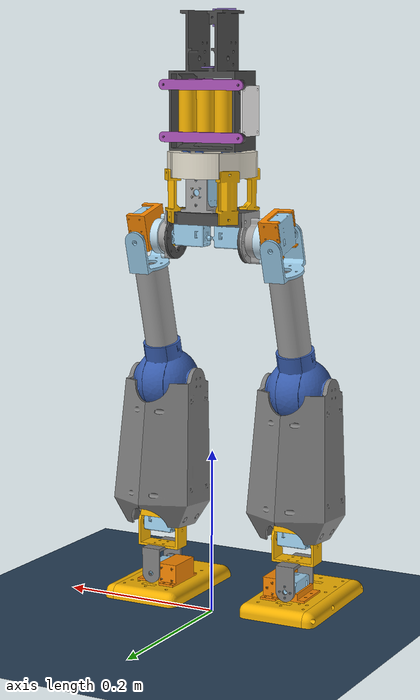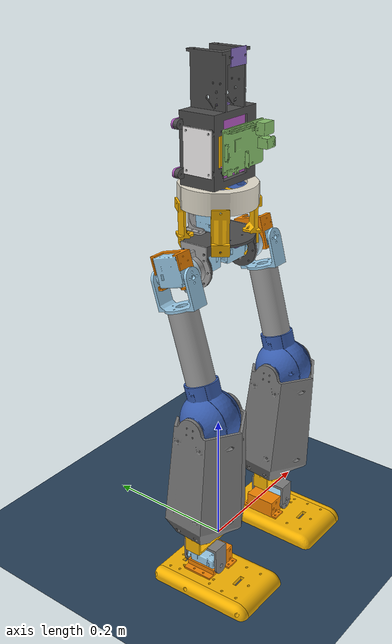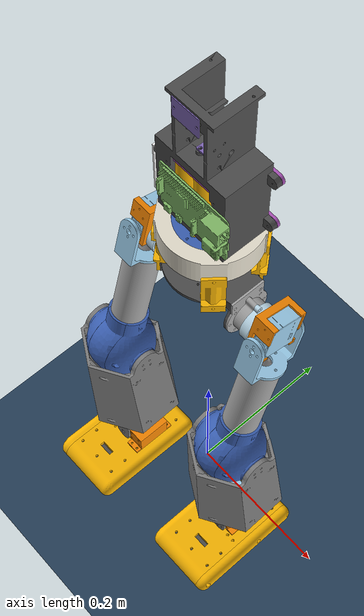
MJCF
<mujoco model="scene">
    <include file="wild_robot.xml" />

    <visual>
        <headlight diffuse="0.6 0.6 0.6" ambient="0.3 0.3 0.3" specular="0 0 0" />
        <rgba haze="0.15 0.25 0.35 1" />
        <global azimuth="160" elevation="-20" />
    </visual>

    <asset>
        <texture type="skybox" builtin="gradient" rgb1="0.3 0.5 0.7" rgb2="0 0 0" width="512" height="3072" />
        <texture type="2d" name="groundplane" builtin="checker" mark="edge" rgb1="0.2 0.3 0.4" rgb2="0.1 0.2 0.3" markrgb="0.8 0.8 0.8" width="300" height="300" />
        <material name="groundplane" texture="groundplane" texuniform="true" texrepeat="5 5" reflectance="0.2" />
    </asset>

    <worldbody>
        <light pos="0 0 3.5" dir="0 0 -1" directional="true" />
        <geom name="floor" size="0 0 0.05" pos="0 0 0" type="plane" material="groundplane" />
    </worldbody>

    <keyframe>
        <key name="home" qpos="-0.00692549 0.0149391 0.487869 0.999632 -0.0254871 -0.00610409 -0.00700632 -3.42235e-05 -0.00215037 -0.0452561 0.0278619 0.0200629 0.0390773 -2.97196e-05 0.0469174 0.0275132 0.0237825 -0.0304712" />
    </keyframe>
</mujoco>

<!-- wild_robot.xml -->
<!-- Generated using onshape-to-robot -->
<!-- Onshape document_id: ba106cac193c0e2253e1958f -->
<mujoco model="wild_robot">
  <compiler angle="radian" meshdir="assets" autolimits="true"/>
  <default>
    <default class="wild_robot">
      <joint frictionloss="0.1" armature="0.005"/>
      <position kp="50" dampratio="1"/>
      <default class="visual">
        <geom type="mesh" contype="0" conaffinity="0" group="2"/>
      </default>
      <default class="collision">
        <geom group="3"/>
      </default>
    </default>
  </default>
  <!-- Additional sensors.xml -->
  <sensor>
    <gyro site="trunk_imu" name="gyro"/>
    <accelerometer site="trunk_imu" name="accelerometer"/>
    <framequat objtype="site" objname="trunk_imu" name="orientation"/>
    <framezaxis objtype="site" objname="trunk_imu" name="upvector"/>
    <framexaxis objtype="site" objname="trunk_imu" name="forwardvector"/>
    <framelinvel objtype="site" objname="trunk_imu" name="global_linvel"/>
    <frameangvel objtype="site" objname="trunk_imu" name="global_angvel"/>
    <gyro site="right_leg_imu" name="right_leg_gyro"/>
    <accelerometer site="right_leg_imu" name="right_leg_acc"/>
    <gyro site="left_leg_imu" name="left_leg_gyro"/>
    <accelerometer site="left_leg_imu" name="left_leg_acc"/>
  </sensor>
  <!-- Additional joints_properties.xml -->
  <default>
    <default class="lobotServo">
      <geom contype="0" conaffinity="0"/>
      <joint damping="0.60" frictionloss="0.052" armature="0.028"/>
      <position kp="17.8" kv="0.0" forcerange="-3.35 3.35"/>
    </default>
    <default class="backlash">
      <!-- +/- 0.5° of backlash -->
      <joint damping="0.01" frictionloss="0" armature="0.01" limited="true" range="-0.008726646259971648 0.008726646259971648"/>
    </default>
  </default>
  <worldbody>
    <body name="base" pos="0 0 0.49">
      <freejoint name="floating_base"/>
      <!-- Link waist -->
      <body name="waist" pos="0 0 0" quat="1 0 0 0" childclass="wild_robot">
        <inertial pos="-3.08835e-05 0.00181517 0.00596571" mass="0.439621" fullinertia="0.000698685 0.000998265 0.00070313 7.22885e-08 5.24148e-07 -1.38528e-05"/>
        <!-- Part htd_45h_1circle -->
        <geom type="mesh" class="visual" pos="-0.00143119 0.0596393 -0.0273687" quat="0.499918 0.500082 -0.500082 -0.499918" mesh="htd_45h_1circle" material="htd_45h_1circle_material"/>
        <geom type="mesh" class="collision" pos="-0.00143119 0.0596393 -0.0273687" quat="0.499918 0.500082 -0.500082 -0.499918" mesh="htd_45h_1circle" material="htd_45h_1circle_material"/>
        <!-- Part waist_trunk_support -->
        <geom type="mesh" class="visual" pos="-0.000153209 -0.000128558 0.12518" quat="0.422618 0 0 0.906308" mesh="waist_trunk_support" material="waist_trunk_support_material"/>
        <geom type="mesh" class="collision" pos="-0.000153209 -0.000128558 0.12518" quat="0.422618 0 0 0.906308" mesh="waist_trunk_support" material="waist_trunk_support_material"/>
        <!-- Part trunk_bottom -->
        <geom type="mesh" class="visual" pos="0 0 0" quat="0 0 0 1" mesh="trunk_bottom" material="trunk_bottom_material"/>
        <geom type="mesh" class="collision" pos="0 0 0" quat="0 0 0 1" mesh="trunk_bottom" material="trunk_bottom_material"/>
        <!-- Part htd_45h_1circle_2 -->
        <geom type="mesh" class="visual" pos="-0.059645 0.00619509 -0.00396881" quat="1 0.000164358 -0 -2.84495e-16" mesh="htd_45h_1circle" material="htd_45h_1circle_material"/>
        <geom type="mesh" class="collision" pos="-0.059645 0.00619509 -0.00396881" quat="1 0.000164358 -0 -2.84495e-16" mesh="htd_45h_1circle" material="htd_45h_1circle_material"/>
        <!-- Part tunk_servo_connect -->
        <geom type="mesh" class="visual" pos="-2.77556e-17 -1.04083e-17 0" quat="2.84495e-16 0 0 1" mesh="tunk_servo_connect" material="tunk_servo_connect_material"/>
        <geom type="mesh" class="collision" pos="-2.77556e-17 -1.04083e-17 0" quat="2.84495e-16 0 0 1" mesh="tunk_servo_connect" material="tunk_servo_connect_material"/>
        <!-- Part hip_cover -->
        <geom type="mesh" class="visual" pos="-0.00025 3.85976e-17 -6.93889e-18" quat="1 0 0 -2.84495e-16" mesh="hip_cover" material="hip_cover_material"/>
        <geom type="mesh" class="collision" pos="-0.00025 3.85976e-17 -6.93889e-18" quat="1 0 0 -2.84495e-16" mesh="hip_cover" material="hip_cover_material"/>
        <!-- Part scroll_out -->
        <geom type="mesh" class="visual" pos="-9.02056e-17 1.49186e-16 0.12518" quat="0.422618 0 -2.22045e-16 0.906308" mesh="scroll_out" material="scroll_out_material"/>
        <geom type="mesh" class="collision" pos="-9.02056e-17 1.49186e-16 0.12518" quat="0.422618 0 -2.22045e-16 0.906308" mesh="scroll_out" material="scroll_out_material"/>
        <!-- Part waist_trunk_support_2 -->
        <geom type="mesh" class="visual" pos="0.000153209 -0.000128558 0.12518" quat="0.422618 0 9.69569e-18 -0.906308" mesh="waist_trunk_support" material="waist_trunk_support_material"/>
        <geom type="mesh" class="collision" pos="0.000153209 -0.000128558 0.12518" quat="0.422618 0 9.69569e-18 -0.906308" mesh="waist_trunk_support" material="waist_trunk_support_material"/>
        <!-- Part hip_trunk_connect -->
        <geom type="mesh" class="visual" pos="-0.0001 3.81639e-17 -6.93889e-18" quat="1 0 0 -2.84495e-16" mesh="hip_trunk_connect" material="hip_trunk_connect_material"/>
        <geom type="mesh" class="collision" pos="-0.0001 3.81639e-17 -6.93889e-18" quat="1 0 0 -2.84495e-16" mesh="hip_trunk_connect" material="hip_trunk_connect_material"/>
        <!-- Part waist_trunk_support_3 -->
        <geom type="mesh" class="visual" pos="-0.000153209 0.000128558 0.12518" quat="0.906308 0 0 0.422618" mesh="waist_trunk_support" material="waist_trunk_support_material"/>
        <geom type="mesh" class="collision" pos="-0.000153209 0.000128558 0.12518" quat="0.906308 0 0 0.422618" mesh="waist_trunk_support" material="waist_trunk_support_material"/>
        <!-- Part scroll_inner -->
        <geom type="mesh" class="visual" pos="-0.000306418 0.000257115 0.12518" quat="0.906308 -8.77968e-17 -0 -0.422618" mesh="scroll_inner" material="scroll_inner_material"/>
        <geom type="mesh" class="collision" pos="-0.000306418 0.000257115 0.12518" quat="0.906308 -8.77968e-17 -0 -0.422618" mesh="scroll_inner" material="scroll_inner_material"/>
        <!-- Part pca9548a -->
        <geom type="mesh" class="visual" pos="-6.93889e-18 -0.0287 -0.0076" quat="0.707107 0 0 0.707107" mesh="pca9548a" material="pca9548a_material"/>
        <geom type="mesh" class="collision" pos="-6.93889e-18 -0.0287 -0.0076" quat="0.707107 0 0 0.707107" mesh="pca9548a" material="pca9548a_material"/>
        <!-- Part waist_trunk_support_4 -->
        <geom type="mesh" class="visual" pos="0.000153209 0.000128558 0.12518" quat="0.906308 0 0 -0.422618" mesh="waist_trunk_support" material="waist_trunk_support_material"/>
        <geom type="mesh" class="collision" pos="0.000153209 0.000128558 0.12518" quat="0.906308 0 0 -0.422618" mesh="waist_trunk_support" material="waist_trunk_support_material"/>
        <!-- Part hip_cover_2 -->
        <geom type="mesh" class="visual" pos="0.00025 -3.85976e-17 -6.93889e-18" quat="2.84495e-16 0 0 1" mesh="hip_cover" material="hip_cover_material"/>
        <geom type="mesh" class="collision" pos="0.00025 -3.85976e-17 -6.93889e-18" quat="2.84495e-16 0 0 1" mesh="hip_cover" material="hip_cover_material"/>
        <!-- Part htd_45h_1circle_3 -->
        <geom type="mesh" class="visual" pos="0.00143119 -0.0596393 -0.0273687" quat="0.499918 0.500082 0.500082 0.499918" mesh="htd_45h_1circle" material="htd_45h_1circle_material"/>
        <geom type="mesh" class="collision" pos="0.00143119 -0.0596393 -0.0273687" quat="0.499918 0.500082 0.500082 0.499918" mesh="htd_45h_1circle" material="htd_45h_1circle_material"/>
        <!-- Part hip_trunk_connect_2 -->
        <geom type="mesh" class="visual" pos="0.0001 -3.81639e-17 -6.93889e-18" quat="2.84495e-16 0 0 1" mesh="hip_trunk_connect" material="hip_trunk_connect_material"/>
        <geom type="mesh" class="collision" pos="0.0001 -3.81639e-17 -6.93889e-18" quat="2.84495e-16 0 0 1" mesh="hip_trunk_connect" material="hip_trunk_connect_material"/>
        <!-- Link chassis -->
        <body name="chassis" pos="4.17458e-05 -1.97751e-05 0.0482" quat="0.000583051 1 -2.40923e-07 -0.00041321">
          <!-- Joint from waist to chassis -->
          <joint axis="0 0 1" name="waist" type="hinge" range="-1.5707963267948966 1.5707963267948966" class="lobotServo"/>
          <inertial pos="0.00235226 0.00416672 -0.0682563" mass="0.841214" fullinertia="0.00126289 0.00149567 0.000913668 -0.000107674 2.45804e-05 3.30802e-05"/>
          <!-- Part cell -->
          <geom type="mesh" class="visual" pos="0.0233086 -0.211191 -0.0331" quat="0.707107 0.707107 3.14018e-16 2.96301e-16" mesh="cell" material="cell_material"/>
          <geom type="mesh" class="collision" pos="0.0233086 -0.211191 -0.0331" quat="0.707107 0.707107 3.14018e-16 2.96301e-16" mesh="cell" material="cell_material"/>
          <!-- Part battery_hook -->
          <geom type="mesh" class="visual" pos="-0.000141421 -0.0296414 0.1141" quat="4.996e-16 -4.08675e-17 -1.37213e-16 -1" mesh="battery_hook" material="battery_hook_material"/>
          <geom type="mesh" class="collision" pos="-0.000141421 -0.0296414 0.1141" quat="4.996e-16 -4.08675e-17 -1.37213e-16 -1" mesh="battery_hook" material="battery_hook_material"/>
          <!-- Part rp_assemble -->
          <geom type="mesh" class="visual" pos="0.00985858 0.0311486 -0.068" quat="1 -0 -1.02979e-16 6.017e-16" mesh="rp_assemble" material="rp_assemble_material"/>
          <geom type="mesh" class="collision" pos="0.00985858 0.0311486 -0.068" quat="1 -0 -1.02979e-16 6.017e-16" mesh="rp_assemble" material="rp_assemble_material"/>
          <!-- Part batterybox -->
          <geom type="mesh" class="visual" pos="-0.000141421 0.0233586 -0.068" quat="8.05863e-17 4.996e-16 -1 5.182e-20" mesh="batterybox" material="batterybox_material"/>
          <geom type="mesh" class="collision" pos="-0.000141421 0.0233586 -0.068" quat="8.05863e-17 4.996e-16 -1 5.182e-20" mesh="batterybox" material="batterybox_material"/>
          <!-- Part bno085 -->
          <geom type="mesh" class="visual" pos="0.0951086 -0.000141421 -0.119" quat="5.00161e-16 4.85373e-17 8.52917e-17 -1" mesh="bno085" material="bno085_material"/>
          <geom type="mesh" class="collision" pos="0.0951086 -0.000141421 -0.119" quat="5.00161e-16 4.85373e-17 8.52917e-17 -1" mesh="bno085" material="bno085_material"/>
          <!-- Part battery_hook_2 -->
          <geom type="mesh" class="visual" pos="-0.000141421 -0.0296414 -0.2503" quat="0 -1 -4.996e-16 8.05673e-17" mesh="battery_hook" material="battery_hook_material"/>
          <geom type="mesh" class="collision" pos="-0.000141421 -0.0296414 -0.2503" quat="0 -1 -4.996e-16 8.05673e-17" mesh="battery_hook" material="battery_hook_material"/>
          <!-- Part cell_2 -->
          <geom type="mesh" class="visual" pos="-0.000141421 -0.234991 -0.0331" quat="0.707107 0.707107 3.14018e-16 2.96301e-16" mesh="cell" material="cell_material"/>
          <geom type="mesh" class="collision" pos="-0.000141421 -0.234991 -0.0331" quat="0.707107 0.707107 3.14018e-16 2.96301e-16" mesh="cell" material="cell_material"/>
          <!-- Part pca9548a_2 -->
          <geom type="mesh" class="visual" pos="-0.000141421 0.0293586 -0.175613" quat="0.5 -0.5 -0.5 -0.5" mesh="pca9548a" material="pca9548a_material"/>
          <geom type="mesh" class="collision" pos="-0.000141421 0.0293586 -0.175613" quat="0.5 -0.5 -0.5 -0.5" mesh="pca9548a" material="pca9548a_material"/>
          <!-- Part cell_3 -->
          <geom type="mesh" class="visual" pos="-0.0235914 -0.234991 -0.0331" quat="0.707107 0.707107 3.14018e-16 2.96301e-16" mesh="cell" material="cell_material"/>
          <geom type="mesh" class="collision" pos="-0.0235914 -0.234991 -0.0331" quat="0.707107 0.707107 3.14018e-16 2.96301e-16" mesh="cell" material="cell_material"/>
          <!-- Part hiwonderboard -->
          <geom type="mesh" class="visual" pos="-0.0462414 0.0563586 -0.068" quat="0.5 -0.5 -0.5 0.5" mesh="hiwonderboard" material="hiwonderboard_material"/>
          <geom type="mesh" class="collision" pos="-0.0462414 0.0563586 -0.068" quat="0.5 -0.5 -0.5 0.5" mesh="hiwonderboard" material="hiwonderboard_material"/>
          <!-- Part waist_platform -->
          <geom type="mesh" class="visual" pos="-0.000141421 -0.000141421 -0.0763796" quat="5.42101e-20 1 4.996e-16 1.70005e-17" mesh="waist_platform" material="waist_platform_material"/>
          <geom type="mesh" class="collision" pos="-0.000141421 -0.000141421 -0.0763796" quat="5.42101e-20 1 4.996e-16 1.70005e-17" mesh="waist_platform" material="waist_platform_material"/>
          <!-- Part waist_platform_2 -->
          <geom type="mesh" class="visual" pos="-0.000141421 -0.000141421 -0.0763796" quat="5.42101e-20 1 4.996e-16 1.70005e-17" mesh="waist_platform_2" material="waist_platform_2_material"/>
          <geom type="mesh" class="collision" pos="-0.000141421 -0.000141421 -0.0763796" quat="5.42101e-20 1 4.996e-16 1.70005e-17" mesh="waist_platform_2" material="waist_platform_2_material"/>
          <!-- Part cell_4 -->
          <geom type="mesh" class="visual" pos="0.0233086 -0.234991 -0.0331" quat="0.707107 0.707107 3.14018e-16 2.96301e-16" mesh="cell" material="cell_material"/>
          <geom type="mesh" class="collision" pos="0.0233086 -0.234991 -0.0331" quat="0.707107 0.707107 3.14018e-16 2.96301e-16" mesh="cell" material="cell_material"/>
          <!-- Part cell_5 -->
          <geom type="mesh" class="visual" pos="-0.0235914 -0.211191 -0.0331" quat="0.707107 0.707107 3.14018e-16 2.96301e-16" mesh="cell" material="cell_material"/>
          <geom type="mesh" class="collision" pos="-0.0235914 -0.211191 -0.0331" quat="0.707107 0.707107 3.14018e-16 2.96301e-16" mesh="cell" material="cell_material"/>
          <!-- Part cell_6 -->
          <geom type="mesh" class="visual" pos="-0.000141421 -0.211191 -0.0331" quat="0.707107 0.707107 3.14018e-16 2.96301e-16" mesh="cell" material="cell_material"/>
          <geom type="mesh" class="collision" pos="-0.000141421 -0.211191 -0.0331" quat="0.707107 0.707107 3.14018e-16 2.96301e-16" mesh="cell" material="cell_material"/>
          <!-- Part battery_servo_connect -->
          <geom type="mesh" class="visual" pos="-5.00173e-18 -3.25261e-19 -0.0741796" quat="0 1 0 0" mesh="battery_servo_connect" material="battery_servo_connect_material"/>
          <geom type="mesh" class="collision" pos="-5.00173e-18 -3.25261e-19 -0.0741796" quat="0 1 0 0" mesh="battery_servo_connect" material="battery_servo_connect_material"/>
          <!-- Frame trunk_imu -->
          <site group="3" name="trunk_imu" pos="0.000119839 -0.000141421 -0.119" quat="9.77815e-17 -5.82814e-16 1 -1.38778e-17"/>
        </body>
        <!-- Link left_hip -->
        <body name="left_hip" pos="0.0536 4.74705e-05 -0.0335836" quat="0.499502 -0.500085 -0.500498 0.499915">
          <!-- Joint from waist to left_hip -->
          <joint axis="0 0 1" name="left_waist_hip" type="hinge" range="-1.308996938995747 1.3089969389957472" class="lobotServo"/>
          <inertial pos="-0.000491371 -0.0094267 -0.0331054" mass="0.0849728" fullinertia="1.97777e-05 1.95098e-05 2.44282e-05 5.27256e-07 -4.14571e-07 -1.64422e-06"/>
          <!-- Part hip_servo_hook_left -->
          <geom type="mesh" class="visual" pos="0.00859714 -0.0324713 0.0566" quat="0.560986 0.430459 0.560986 -0.430459" mesh="hip_servo_hook_left" material="hip_servo_hook_left_material"/>
          <geom type="mesh" class="collision" pos="0.00859714 -0.0324713 0.0566" quat="0.560986 0.430459 0.560986 -0.430459" mesh="hip_servo_hook_left" material="hip_servo_hook_left_material"/>
          <!-- Part htd_45h_1circle_4 -->
          <geom type="mesh" class="visual" pos="0.0260594 0.000376192 0.0231393" quat="0.0921807 0.701073 0.0921807 -0.701073" mesh="htd_45h_1circle" material="htd_45h_1circle_material"/>
          <geom type="mesh" class="collision" pos="0.0260594 0.000376192 0.0231393" quat="0.0921807 0.701073 0.0921807 -0.701073" mesh="htd_45h_1circle" material="htd_45h_1circle_material"/>
          <!-- Part hip_servo_gear -->
          <geom type="mesh" class="visual" pos="0.00875844 -0.0326869 0.054" quat="0.560986 0.430459 0.560986 -0.430459" mesh="hip_servo_gear" material="hip_servo_gear_material"/>
          <geom type="mesh" class="collision" pos="0.00875844 -0.0326869 0.054" quat="0.560986 0.430459 0.560986 -0.430459" mesh="hip_servo_gear" material="hip_servo_gear_material"/>
          <!-- Part hip_gear -->
          <geom type="mesh" class="visual" pos="0.00859714 -0.0324713 0.0529" quat="0.560986 0.430459 0.560986 -0.430459" mesh="hip_gear" material="hip_gear_material"/>
          <geom type="mesh" class="collision" pos="0.00859714 -0.0324713 0.0529" quat="0.560986 0.430459 0.560986 -0.430459" mesh="hip_gear" material="hip_gear_material"/>
          <!-- Link upper_leg -->
          <body name="upper_leg" pos="-0.0259403 -0.00712299 -0.0365475" quat="0.701293 -0.0926664 0.700714 0.092743">
            <!-- Joint from left_hip to upper_leg -->
            <joint axis="0 0 1" name="left_hip" type="hinge" range="-1.0471975511965959 0.34906585039886767" class="lobotServo"/>
            <inertial pos="-0.00104181 0.159312 0.0267034" mass="0.236565" fullinertia="0.000987068 0.000125887 0.000979617 9.86461e-06 9.63535e-09 1.07533e-06"/>
            <!-- Part up_leg_servo_connect -->
            <geom type="mesh" class="visual" pos="-0.095 2.77556e-17 0.0267" quat="0.707107 0.707107 1.95106e-16 2.45413e-16" mesh="up_leg_servo_connect" material="up_leg_servo_connect_material"/>
            <geom type="mesh" class="collision" pos="-0.095 2.77556e-17 0.0267" quat="0.707107 0.707107 1.95106e-16 2.45413e-16" mesh="up_leg_servo_connect" material="up_leg_servo_connect_material"/>
            <!-- Part icm45686 -->
            <geom type="mesh" class="visual" pos="-3.33067e-16 0.174352 0.1872" quat="0.5 0.5 0.5 -0.5" mesh="icm45686" material="icm45686_material"/>
            <geom type="mesh" class="collision" pos="-3.33067e-16 0.174352 0.1872" quat="0.5 0.5 0.5 -0.5" mesh="icm45686" material="icm45686_material"/>
            <!-- Part knee_ball_left -->
            <geom type="mesh" class="visual" pos="-0.0948 -0.0004 0.0266985" quat="0.707105 0.707109 -2.84803e-06 2.84595e-06" mesh="knee_ball_left" material="knee_ball_left_material"/>
            <geom type="mesh" class="collision" pos="-0.0948 -0.0004 0.0266985" quat="0.707105 0.707109 -2.84803e-06 2.84595e-06" mesh="knee_ball_left" material="knee_ball_left_material"/>
            <!-- Part knee_ball_mid -->
            <geom type="mesh" class="visual" pos="-0.095 -0.0002 0.0267" quat="0.707107 0.707107 2.41093e-16 2.16664e-16" mesh="knee_ball_mid" material="knee_ball_mid_material"/>
            <geom type="mesh" class="collision" pos="-0.095 -0.0002 0.0267" quat="0.707107 0.707107 2.41093e-16 2.16664e-16" mesh="knee_ball_mid" material="knee_ball_mid_material"/>
            <!-- Part up_leg -->
            <geom type="mesh" class="visual" pos="-0.095 1.38778e-17 0.0267" quat="0.707107 0.707107 2.41093e-16 2.18245e-16" mesh="up_leg" material="up_leg_material"/>
            <geom type="mesh" class="collision" pos="-0.095 1.38778e-17 0.0267" quat="0.707107 0.707107 2.41093e-16 2.18245e-16" mesh="up_leg" material="up_leg_material"/>
            <!-- Part htd_45h_1circle_5 -->
            <geom type="mesh" class="visual" pos="0.0253613 0.198628 -0.0329432" quat="0.706811 0.000530114 -0.707402 0.000526879" mesh="htd_45h_1circle" material="htd_45h_1circle_material"/>
            <geom type="mesh" class="collision" pos="0.0253613 0.198628 -0.0329432" quat="0.706811 0.000530114 -0.707402 0.000526879" mesh="htd_45h_1circle" material="htd_45h_1circle_material"/>
            <!-- Part knee_ball_right -->
            <geom type="mesh" class="visual" pos="-0.0952 -0.000399963 0.0268019" quat="0.707365 0.706849 -2.31378e-05 2.31379e-05" mesh="knee_ball_right" material="knee_ball_right_material"/>
            <geom type="mesh" class="collision" pos="-0.0952 -0.000399963 0.0268019" quat="0.707365 0.706849 -2.31378e-05 2.31379e-05" mesh="knee_ball_right" material="knee_ball_right_material"/>
            <!-- Frame left_leg_imu -->
            <site group="3" name="left_leg_imu" pos="-3.33067e-16 0.173352 0.0264651" quat="0.5 0.5 0.5 -0.5"/>
            <!-- Link lower_leg -->
            <body name="lower_leg" pos="-0.02685 0.192352 0.0267" quat="0.12279 -0.696361 0.122789 -0.696367">
              <!-- Joint from upper_leg to lower_leg -->
              <joint axis="0 0 1" name="left_knee" type="hinge" range="-0.3490658503988667 1.22173047639603" class="lobotServo"/>
              <inertial pos="-0.000521354 -0.101401 0.0270617" mass="0.380663" fullinertia="0.00177714 0.000669988 0.00168908 1.88914e-05 3.0835e-08 -3.5834e-05"/>
              <!-- Part knee_ball_servo_connect -->
              <geom type="mesh" class="visual" pos="-4.90059e-17 0.192752 -0.0678" quat="0.5 -0.5 -0.5 -0.5" mesh="knee_ball_servo_connect" material="knee_ball_servo_connect_material"/>
              <geom type="mesh" class="collision" pos="-4.90059e-17 0.192752 -0.0678" quat="0.5 -0.5 -0.5 -0.5" mesh="knee_ball_servo_connect" material="knee_ball_servo_connect_material"/>
              <!-- Part low_leg_right -->
              <geom type="mesh" class="visual" pos="-1.99623e-15 0.192752 -0.0677579" quat="0.5 -0.5 -0.5 -0.5" mesh="low_leg_right" material="low_leg_right_material"/>
              <geom type="mesh" class="collision" pos="-1.99623e-15 0.192752 -0.0677579" quat="0.5 -0.5 -0.5 -0.5" mesh="low_leg_right" material="low_leg_right_material"/>
              <!-- Part low_leg_left -->
              <geom type="mesh" class="visual" pos="-3.39572e-16 0.192752 -0.0677579" quat="0.5 -0.5 -0.5 -0.5" mesh="low_leg_left" material="low_leg_left_material"/>
              <geom type="mesh" class="collision" pos="-3.39572e-16 0.192752 -0.0677579" quat="0.5 -0.5 -0.5 -0.5" mesh="low_leg_left" material="low_leg_left_material"/>
              <!-- Part knee_ball_right_servo_connct -->
              <geom type="mesh" class="visual" pos="-2.04264e-15 0.192752 -0.0677579" quat="0.5 -0.5 -0.5 -0.5" mesh="knee_ball_right_servo_connct" material="knee_ball_right_servo_connct_material"/>
              <geom type="mesh" class="collision" pos="-2.04264e-15 0.192752 -0.0677579" quat="0.5 -0.5 -0.5 -0.5" mesh="knee_ball_right_servo_connct" material="knee_ball_right_servo_connct_material"/>
              <!-- Part low_leg_servo_connector -->
              <geom type="mesh" class="visual" pos="-2.00361e-15 0.192752 -0.0677579" quat="0.5 -0.5 -0.5 -0.5" mesh="low_leg_servo_connector" material="low_leg_servo_connector_material"/>
              <geom type="mesh" class="collision" pos="-2.00361e-15 0.192752 -0.0677579" quat="0.5 -0.5 -0.5 -0.5" mesh="low_leg_servo_connector" material="low_leg_servo_connector_material"/>
              <!-- Part knee_ball_low_leg_connect -->
              <geom type="mesh" class="visual" pos="-1.65232e-16 0.192752 -0.0676" quat="0.5 -0.5 -0.5 -0.5" mesh="knee_ball_low_leg_connect" material="knee_ball_low_leg_connect_material"/>
              <geom type="mesh" class="collision" pos="-1.65232e-16 0.192752 -0.0676" quat="0.5 -0.5 -0.5 -0.5" mesh="knee_ball_low_leg_connect" material="knee_ball_low_leg_connect_material"/>
              <!-- Part htd_45h_1circle_6 -->
              <geom type="mesh" class="visual" pos="0.0596393 -0.173769 0.0526109" quat="1.31858e-14 -1.45413e-15 -1 0.000164358" mesh="htd_45h_1circle" material="htd_45h_1circle_material"/>
              <geom type="mesh" class="collision" pos="0.0596393 -0.173769 0.0526109" quat="1.31858e-14 -1.45413e-15 -1 0.000164358" mesh="htd_45h_1circle" material="htd_45h_1circle_material"/>
              <!-- Link left_ankle -->
              <body name="left_ankle" pos="-4.74705e-05 -0.179984 0.000442075" quat="0.999048 0.000564473 0.000438249 -0.0436191">
                <!-- Joint from lower_leg to left_ankle -->
                <joint axis="0 0 1" name="left_ankle" type="hinge" range="-0.4363323486443301 0.6108652025522675" class="lobotServo"/>
                <inertial pos="-0.000778386 -0.0291765 0.0259275" mass="0.0230191" fullinertia="1.34186e-05 1.32703e-05 1.41853e-05 -1.80568e-07 1.56329e-08 2.24395e-07"/>
                <!-- Part servo_bracket_btm -->
                <geom type="mesh" class="visual" pos="1.23328e-16 -0.0722 0.0268" quat="0.5 -0.5 -0.5 -0.5" mesh="servo_bracket_btm" material="servo_bracket_btm_material"/>
                <geom type="mesh" class="collision" pos="1.23328e-16 -0.0722 0.0268" quat="0.5 -0.5 -0.5 -0.5" mesh="servo_bracket_btm" material="servo_bracket_btm_material"/>
                <!-- Part servo_bracket_top -->
                <geom type="mesh" class="visual" pos="-1.51788e-18 -0.0732 0.0268" quat="0.5 -0.5 -0.5 -0.5" mesh="servo_bracket_top" material="servo_bracket_top_material"/>
                <geom type="mesh" class="collision" pos="-1.51788e-18 -0.0732 0.0268" quat="0.5 -0.5 -0.5 -0.5" mesh="servo_bracket_top" material="servo_bracket_top_material"/>
                <!-- Link left_foot -->
                <body name="left_foot" pos="-0.0268 -0.0594 0.0268" quat="0.499992 0.500008 0.499992 0.500008">
                  <!-- Joint from left_ankle to left_foot -->
                  <joint axis="0 0 1" name="left_foot" type="hinge" range="-0.34909746539659237 0.3490342354011394" class="lobotServo"/>
                  <inertial pos="-0.0183724 -0.00183883 0.00908575" mass="0.413618" fullinertia="0.00096407 0.00073874 0.0003209 1.74031e-05 -2.95872e-05 1.47775e-05"/>
                  <!-- Part btm_servo_support -->
                  <geom type="mesh" class="visual" pos="-0.0128254 0.000185294 0.0255108" quat="0.499502 0.500498 0.499915 0.500085" mesh="btm_servo_support" material="btm_servo_support_material"/>
                  <geom type="mesh" class="collision" pos="-0.0128254 0.000185294 0.0255108" quat="0.499502 0.500498 0.499915 0.500085" mesh="btm_servo_support" material="btm_servo_support_material"/>
                  <!-- Part btm_top_front -->
                  <geom type="mesh" class="visual" pos="-0.0126255 0.00118539 0.025429" quat="0.499502 0.500498 0.499915 0.500085" mesh="btm_top_front" material="btm_top_front_material"/>
                  <geom type="mesh" class="collision" pos="-0.0126255 0.00118539 0.025429" quat="0.499502 0.500498 0.499915 0.500085" mesh="btm_top_front" material="btm_top_front_material"/>
                  <!-- Part htd_45h_1circle_7 -->
                  <geom type="mesh" class="visual" pos="-0.0596436 -0.0062757 0.0510108" quat="0.00074741 -1 3.08837e-07 0.00041321" mesh="htd_45h_1circle" material="htd_45h_1circle_material"/>
                  <geom type="mesh" class="collision" pos="-0.0596436 -0.0062757 0.0510108" quat="0.00074741 -1 3.08837e-07 0.00041321" mesh="htd_45h_1circle" material="htd_45h_1circle_material"/>
                  <!-- Part foot_btm_back -->
                  <geom type="mesh" class="visual" pos="-0.0125253 0.0011852 0.0255946" quat="0.499502 0.500498 0.499915 0.500085" mesh="foot_btm_back" material="foot_btm_back_material"/>
                  <geom type="mesh" class="collision" pos="-0.0125253 0.0011852 0.0255946" quat="0.499502 0.500498 0.499915 0.500085" mesh="foot_btm_back" material="foot_btm_back_material"/>
                  <!-- Part foot_side -->
                  <geom type="mesh" class="visual" pos="-0.0128254 0.000185294 0.0255108" quat="0.499502 0.500498 0.499915 0.500085" mesh="foot_side" material="foot_side_material"/>
                  <geom type="mesh" class="collision" pos="-0.0128254 0.000185294 0.0255108" quat="0.499502 0.500498 0.499915 0.500085" mesh="foot_side" material="foot_side_material"/>
                  <!-- Part btm_servo_support_side -->
                  <geom type="mesh" class="visual" pos="-0.0128254 0.000185294 0.0255108" quat="0.499502 0.500498 0.499915 0.500085" mesh="btm_servo_support_side" material="btm_servo_support_side_material"/>
                  <geom type="mesh" class="collision" pos="-0.0128254 0.000185294 0.0255108" quat="0.499502 0.500498 0.499915 0.500085" mesh="btm_servo_support_side" material="btm_servo_support_side_material"/>
                  <!-- Part foot_main -->
                  <geom type="mesh" class="visual" pos="-0.0128254 0.000185294 0.0255108" quat="0.499502 0.500498 0.499915 0.500085" mesh="foot_main" material="foot_main_material"/>
                  <geom type="mesh" class="collision" pos="-0.0128254 0.000185294 0.0255108" quat="0.499502 0.500498 0.499915 0.500085" mesh="foot_main" material="foot_main_material"/>
                  <!-- Part foot_btm_front -->
                  <geom type="mesh" class="visual" pos="-0.0125255 0.00118539 0.0254289" quat="0.499502 0.500498 0.499915 0.500085" mesh="foot_btm_front" material="foot_btm_front_material"/>
                  <geom type="mesh" class="collision" pos="-0.0125255 0.00118539 0.0254289" quat="0.499502 0.500498 0.499915 0.500085" mesh="foot_btm_front" material="foot_btm_front_material" name="left_foot_btm_front"/>
                  <!-- Part btm_top_back -->
                  <geom type="mesh" class="visual" pos="-0.0126253 0.0011852 0.0255947" quat="0.499502 0.500498 0.499915 0.500085" mesh="btm_top_back" material="btm_top_back_material"/>
                  <geom type="mesh" class="collision" pos="-0.0126253 0.0011852 0.0255947" quat="0.499502 0.500498 0.499915 0.500085" mesh="btm_top_back" material="btm_top_back_material" name="left_foot_btm_back"/>
                  <!-- Frame left_foot_front -->
                  <site group="3" name="left_foot_front" pos="-0.0338724 0.00125162 -0.0313534" quat="0.706814 0.00041245 0.707399 0.000412109"/>
                  <!-- Frame left_foot_back -->
                  <site group="3" name="left_foot_back" pos="-0.0337982 0.00114695 0.0584122" quat="0.706814 0.00041245 0.707399 0.000412109"/>
                </body>
              </body>
            </body>
          </body>
        </body>
        <!-- Link right_hip -->
        <body name="right_hip" pos="-0.0536 -4.74705e-05 -0.0335836" quat="0.499915 -0.500498 0.500085 -0.499502">
          <!-- Joint from waist to right_hip -->
          <joint axis="0 0 1" name="right_waist_hip" type="hinge" range="-1.2823101814238873 1.3356836965676069" class="lobotServo"/>
          <inertial pos="5.68446e-05 -0.0093822 -0.0331404" mass="0.0849728" fullinertia="1.97652e-05 1.9558e-05 2.44237e-05 -5.40817e-07 3.36235e-07 -1.65062e-06"/>
          <!-- Part htd_45h_1circle_8 -->
          <geom type="mesh" class="visual" pos="-0.0262318 0.00112832 -0.0961393" quat="0.101527 0.69978 -0.101527 0.69978" mesh="htd_45h_1circle" material="htd_45h_1circle_material"/>
          <geom type="mesh" class="collision" pos="-0.0262318 0.00112832 -0.0961393" quat="0.101527 0.69978 -0.101527 0.69978" mesh="htd_45h_1circle" material="htd_45h_1circle_material"/>
          <!-- Part hip_servo_gear_2 -->
          <geom type="mesh" class="visual" pos="-0.00962752 -0.0324416 0.054" quat="0.422936 0.566679 0.422936 -0.566679" mesh="hip_servo_gear" material="hip_servo_gear_material"/>
          <geom type="mesh" class="collision" pos="-0.00962752 -0.0324416 0.054" quat="0.422936 0.566679 0.422936 -0.566679" mesh="hip_servo_gear" material="hip_servo_gear_material"/>
          <!-- Part hip_servo_hook_right -->
          <geom type="mesh" class="visual" pos="-0.00965226 -0.0321735 0.0566" quat="0.566679 0.422936 -0.566679 0.422936" mesh="hip_servo_hook_right" material="hip_servo_hook_right_material"/>
          <geom type="mesh" class="collision" pos="-0.00965226 -0.0321735 0.0566" quat="0.566679 0.422936 -0.566679 0.422936" mesh="hip_servo_hook_right" material="hip_servo_hook_right_material"/>
          <!-- Part hip_gear_2 -->
          <geom type="mesh" class="visual" pos="-0.00965226 -0.0321735 0.0529" quat="0.422936 0.566679 0.422936 -0.566679" mesh="hip_gear" material="hip_gear_material"/>
          <geom type="mesh" class="collision" pos="-0.00965226 -0.0321735 0.0529" quat="0.422936 0.566679 0.422936 -0.566679" mesh="hip_gear" material="hip_gear_material"/>
          <!-- Link upper_leg_2 -->
          <body name="upper_leg_2" pos="0.0255493 -0.00775574 -0.0364525" quat="0.699415 -0.102092 -0.699993 -0.102008">
            <!-- Joint from right_hip to upper_leg_2 -->
            <joint axis="0 0 1" name="right_hip" type="hinge" range="-0.3491485713851723 1.0471148302102913" class="lobotServo"/>
            <inertial pos="-0.00105499 0.159312 0.0267034" mass="0.236565" fullinertia="0.000987066 0.000125888 0.000979617 9.93584e-06 9.5464e-09 1.07533e-06"/>
            <!-- Part up_leg_servo_connect_2 -->
            <geom type="mesh" class="visual" pos="-0.095 -7.85849e-06 0.0267" quat="0.707107 0.707107 2.92463e-05 2.92463e-05" mesh="up_leg_servo_connect" material="up_leg_servo_connect_material"/>
            <geom type="mesh" class="collision" pos="-0.095 -7.85849e-06 0.0267" quat="0.707107 0.707107 2.92463e-05 2.92463e-05" mesh="up_leg_servo_connect" material="up_leg_servo_connect_material"/>
            <!-- Part icm45686_2 -->
            <geom type="mesh" class="visual" pos="-1.44226e-05 0.174352 0.1872" quat="0.500021 0.499979 0.500021 -0.499979" mesh="icm45686" material="icm45686_material"/>
            <geom type="mesh" class="collision" pos="-1.44226e-05 0.174352 0.1872" quat="0.500021 0.499979 0.500021 -0.499979" mesh="icm45686" material="icm45686_material"/>
            <!-- Part knee_ball_left_2 -->
            <geom type="mesh" class="visual" pos="-0.0948 -0.000407842 0.0266985" quat="0.707105 0.707109 2.63983e-05 3.20922e-05" mesh="knee_ball_left" material="knee_ball_left_material"/>
            <geom type="mesh" class="collision" pos="-0.0948 -0.000407842 0.0266985" quat="0.707105 0.707109 2.63983e-05 3.20922e-05" mesh="knee_ball_left" material="knee_ball_left_material"/>
            <!-- Part knee_ball_mid_2 -->
            <geom type="mesh" class="visual" pos="-0.095 -0.000207858 0.0267" quat="0.707107 0.707107 2.92463e-05 2.92463e-05" mesh="knee_ball_mid" material="knee_ball_mid_material"/>
            <geom type="mesh" class="collision" pos="-0.095 -0.000207858 0.0267" quat="0.707107 0.707107 2.92463e-05 2.92463e-05" mesh="knee_ball_mid" material="knee_ball_mid_material"/>
            <!-- Part up_leg_2 -->
            <geom type="mesh" class="visual" pos="-0.095 -7.85849e-06 0.0267" quat="0.707107 0.707107 2.92463e-05 2.92463e-05" mesh="up_leg" material="up_leg_material"/>
            <geom type="mesh" class="collision" pos="-0.095 -7.85849e-06 0.0267" quat="0.707107 0.707107 2.92463e-05 2.92463e-05" mesh="up_leg" material="up_leg_material"/>
            <!-- Part htd_45h_1circle_9 -->
            <geom type="mesh" class="visual" pos="0.0253449 0.19863 -0.0329432" quat="0.706811 0.000559373 -0.707402 0.000556113" mesh="htd_45h_1circle" material="htd_45h_1circle_material"/>
            <geom type="mesh" class="collision" pos="0.0253449 0.19863 -0.0329432" quat="0.706811 0.000559373 -0.707402 0.000556113" mesh="htd_45h_1circle" material="htd_45h_1circle_material"/>
            <!-- Part knee_ball_right_2 -->
            <geom type="mesh" class="visual" pos="-0.0952 -0.000407838 0.0268019" quat="0.707365 0.706849 6.0978e-06 5.23949e-05" mesh="knee_ball_right" material="knee_ball_right_material"/>
            <geom type="mesh" class="collision" pos="-0.0952 -0.000407838 0.0268019" quat="0.707365 0.706849 6.0978e-06 5.23949e-05" mesh="knee_ball_right" material="knee_ball_right_material"/>
            <!-- Frame right_leg_imu -->
            <site group="3" name="right_leg_imu" pos="-1.43399e-05 0.173352 0.0264651" quat="0.500021 0.499979 0.500021 -0.499979"/>
            <!-- Link lower_leg_2 -->
            <body name="lower_leg_2" pos="-0.0268659 0.19235 0.0267" quat="0.122819 -0.696366 0.12276 -0.696362">
              <!-- Joint from upper_leg_2 to lower_leg_2 -->
              <joint axis="0 0 1" name="right_knee" type="hinge" range="-0.34906585039886595 1.2217304763960306" class="lobotServo"/>
              <inertial pos="-0.000521354 -0.101401 0.0270617" mass="0.380663" fullinertia="0.00177714 0.000669988 0.00168908 1.88914e-05 3.0835e-08 -3.5834e-05"/>
              <!-- Part knee_ball_servo_connect_2 -->
              <geom type="mesh" class="visual" pos="-4.46691e-17 0.192752 -0.0678" quat="0.5 -0.5 -0.5 -0.5" mesh="knee_ball_servo_connect" material="knee_ball_servo_connect_material"/>
              <geom type="mesh" class="collision" pos="-4.46691e-17 0.192752 -0.0678" quat="0.5 -0.5 -0.5 -0.5" mesh="knee_ball_servo_connect" material="knee_ball_servo_connect_material"/>
              <!-- Part low_leg_right_2 -->
              <geom type="mesh" class="visual" pos="-2.16233e-15 0.192752 -0.0677579" quat="0.5 -0.5 -0.5 -0.5" mesh="low_leg_right" material="low_leg_right_material"/>
              <geom type="mesh" class="collision" pos="-2.16233e-15 0.192752 -0.0677579" quat="0.5 -0.5 -0.5 -0.5" mesh="low_leg_right" material="low_leg_right_material"/>
              <!-- Part low_leg_left_2 -->
              <geom type="mesh" class="visual" pos="-2.06432e-16 0.192752 -0.0677579" quat="0.5 -0.5 -0.5 -0.5" mesh="low_leg_left" material="low_leg_left_material"/>
              <geom type="mesh" class="collision" pos="-2.06432e-16 0.192752 -0.0677579" quat="0.5 -0.5 -0.5 -0.5" mesh="low_leg_left" material="low_leg_left_material"/>
              <!-- Part knee_ball_right_servo_connct_2 -->
              <geom type="mesh" class="visual" pos="-2.00122e-15 0.192752 -0.0677579" quat="0.5 -0.5 -0.5 -0.5" mesh="knee_ball_right_servo_connct" material="knee_ball_right_servo_connct_material"/>
              <geom type="mesh" class="collision" pos="-2.00122e-15 0.192752 -0.0677579" quat="0.5 -0.5 -0.5 -0.5" mesh="knee_ball_right_servo_connct" material="knee_ball_right_servo_connct_material"/>
              <!-- Part low_leg_servo_connector_2 -->
              <geom type="mesh" class="visual" pos="-2.19963e-15 0.192752 -0.0677579" quat="0.5 -0.5 -0.5 -0.5" mesh="low_leg_servo_connector" material="low_leg_servo_connector_material"/>
              <geom type="mesh" class="collision" pos="-2.19963e-15 0.192752 -0.0677579" quat="0.5 -0.5 -0.5 -0.5" mesh="low_leg_servo_connector" material="low_leg_servo_connector_material"/>
              <!-- Part knee_ball_low_leg_connect_2 -->
              <geom type="mesh" class="visual" pos="-6.04985e-17 0.192752 -0.0676" quat="0.5 -0.5 -0.5 -0.5" mesh="knee_ball_low_leg_connect" material="knee_ball_low_leg_connect_material"/>
              <geom type="mesh" class="collision" pos="-6.04985e-17 0.192752 -0.0676" quat="0.5 -0.5 -0.5 -0.5" mesh="knee_ball_low_leg_connect" material="knee_ball_low_leg_connect_material"/>
              <!-- Part htd_45h_1circle_10 -->
              <geom type="mesh" class="visual" pos="0.0596393 -0.173769 0.0526109" quat="1.06883e-14 6.51715e-17 -1 0.000164358" mesh="htd_45h_1circle" material="htd_45h_1circle_material"/>
              <geom type="mesh" class="collision" pos="0.0596393 -0.173769 0.0526109" quat="1.06883e-14 6.51715e-17 -1 0.000164358" mesh="htd_45h_1circle" material="htd_45h_1circle_material"/>
              <!-- Link right_ankle -->
              <body name="right_ankle" pos="-4.74705e-05 -0.179984 0.000442075" quat="2.40923e-07 -0.00041321 0.000583051 -1">
                <!-- Joint from lower_leg_2 to right_ankle -->
                <joint axis="0 0 1" name="right_ankle" type="hinge" range="-0.43633231299858244 0.6108652381980152" class="lobotServo"/>
                <inertial pos="0.00176747 0.0291333 0.0259275" mass="0.0230191" fullinertia="1.34489e-05 1.32401e-05 1.41853e-05 1.64944e-07 -3.98387e-09 -2.24904e-07"/>
                <!-- Part servo_bracket_btm_2 -->
                <geom type="mesh" class="visual" pos="0.00629264 0.0719253 0.0268" quat="0.477714 0.521334 0.477714 -0.521334" mesh="servo_bracket_btm" material="servo_bracket_btm_material"/>
                <geom type="mesh" class="collision" pos="0.00629264 0.0719253 0.0268" quat="0.477714 0.521334 0.477714 -0.521334" mesh="servo_bracket_btm" material="servo_bracket_btm_material"/>
                <!-- Part servo_bracket_top_2 -->
                <geom type="mesh" class="visual" pos="0.0063798 0.0729215 0.0268" quat="0.521334 0.477714 -0.521334 0.477714" mesh="servo_bracket_top" material="servo_bracket_top_material"/>
                <geom type="mesh" class="collision" pos="0.0063798 0.0729215 0.0268" quat="0.521334 0.477714 -0.521334 0.477714" mesh="servo_bracket_top" material="servo_bracket_top_material"/>
                <!-- Link right_foot -->
                <body name="right_foot" pos="-0.021521 0.0615097 0.0268" quat="0.477736 0.477692 -0.521354 -0.521314">
                  <!-- Joint from right_ankle to right_foot -->
                  <joint axis="0 0 1" name="right_foot" type="hinge" range="-0.34915044596643047 0.3489812548313013" class="lobotServo"/>
                  <inertial pos="-0.0182605 0.00187575 -0.0419443" mass="0.413618" fullinertia="0.000978456 0.000752203 0.000319832 -1.71895e-05 -3.90028e-05 -1.62365e-05"/>
                  <!-- Part foot_main_right -->
                  <geom type="mesh" class="visual" pos="-0.0128256 0.159815 -0.0265243" quat="0.499915 0.500085 0.499502 0.500498" mesh="foot_main_right" material="foot_main_right_material"/>
                  <geom type="mesh" class="collision" pos="-0.0128256 0.159815 -0.0265243" quat="0.499915 0.500085 0.499502 0.500498" mesh="foot_main_right" material="foot_main_right_material"/>
                  <!-- Part foot_btm_front_2 -->
                  <geom type="mesh" class="visual" pos="-0.0125255 -0.00118539 -0.0266289" quat="0.499915 0.500085 0.499502 0.500498" mesh="foot_btm_front" material="foot_btm_front_material"/>
                  <geom type="mesh" class="collision" pos="-0.0125255 -0.00118539 -0.0266289" quat="0.499915 0.500085 0.499502 0.500498" mesh="foot_btm_front" material="foot_btm_front_material" name="right_foot_btm_front"/>
                  <!-- Part foot_side_right -->
                  <geom type="mesh" class="visual" pos="-0.0128256 0.159815 -0.0265243" quat="0.499915 0.500085 0.499502 0.500498" mesh="foot_side_right" material="foot_side_right_material"/>
                  <geom type="mesh" class="collision" pos="-0.0128256 0.159815 -0.0265243" quat="0.499915 0.500085 0.499502 0.500498" mesh="foot_side_right" material="foot_side_right_material"/>
                  <!-- Part btm_servo_support_2 -->
                  <geom type="mesh" class="visual" pos="-0.0128254 -0.000185294 -0.0267108" quat="0.500498 -0.499502 0.500085 -0.499915" mesh="btm_servo_support" material="btm_servo_support_material"/>
                  <geom type="mesh" class="collision" pos="-0.0128254 -0.000185294 -0.0267108" quat="0.500498 -0.499502 0.500085 -0.499915" mesh="btm_servo_support" material="btm_servo_support_material"/>
                  <!-- Part foot_btm_back_2 -->
                  <geom type="mesh" class="visual" pos="-0.0105255 -0.00118539 -0.0266273" quat="0.499915 0.500085 0.499502 0.500498" mesh="foot_btm_back" material="foot_btm_back_material"/>
                  <geom type="mesh" class="collision" pos="-0.0105255 -0.00118539 -0.0266273" quat="0.499915 0.500085 0.499502 0.500498" mesh="foot_btm_back" material="foot_btm_back_material"
                  name = "right_foot_btm_back"/>
                  <!-- Part htd_45h_1circle_11 -->
                  <geom type="mesh" class="visual" pos="-0.0596436 0.0062757 -0.0522108" quat="1 0.00074741 -0.00041321 3.08837e-07" mesh="htd_45h_1circle" material="htd_45h_1circle_material"/>
                  <geom type="mesh" class="collision" pos="-0.0596436 0.0062757 -0.0522108" quat="1 0.00074741 -0.00041321 3.08837e-07" mesh="htd_45h_1circle" material="htd_45h_1circle_material"/>
                  <!-- Part btm_top_back_2 -->
                  <geom type="mesh" class="visual" pos="-0.0126255 -0.00118539 -0.026629" quat="0.499915 0.500085 0.499502 0.500498" mesh="btm_top_back" material="btm_top_back_material"/>
                  <geom type="mesh" class="collision" pos="-0.0126255 -0.00118539 -0.026629" quat="0.499915 0.500085 0.499502 0.500498" mesh="btm_top_back" material="btm_top_back_material"/>
                  <!-- Part btm_top_front_2 -->
                  <geom type="mesh" class="visual" pos="-0.0126255 -0.00118539 -0.026629" quat="0.499915 0.500085 0.499502 0.500498" mesh="btm_top_front" material="btm_top_front_material"/>
                  <geom type="mesh" class="collision" pos="-0.0126255 -0.00118539 -0.026629" quat="0.499915 0.500085 0.499502 0.500498" mesh="btm_top_front" material="btm_top_front_material"/>
                  <!-- Part btm_servo_support_side_2 -->
                  <geom type="mesh" class="visual" pos="-0.0128254 -0.000185294 -0.0267108" quat="0.500498 -0.499502 0.500085 -0.499915" mesh="btm_servo_support_side" material="btm_servo_support_side_material"/>
                  <geom type="mesh" class="collision" pos="-0.0128254 -0.000185294 -0.0267108" quat="0.500498 -0.499502 0.500085 -0.499915" mesh="btm_servo_support_side" material="btm_servo_support_side_material"/>
                  <!-- Frame right_foot_front -->
                  <site group="3" name="right_foot_front" pos="-0.0337785 -0.00111915 -0.0834465" quat="0.707399 0.000412109 0.706814 0.00041245"/>
                  <!-- Frame right_foot_back -->
                  <site group="3" name="right_foot_back" pos="-0.0318526 -0.00122364 0.00615509" quat="0.707399 0.000412109 0.706814 0.00041245"/>
                </body>
              </body>
            </body>
          </body>
        </body>
      </body>
    </body>
  </worldbody>
  <asset>
    <mesh file="foot_main.stl"/>
    <mesh file="hip_gear.stl"/>
    <mesh file="btm_servo_support.stl"/>
    <mesh file="scroll_inner.stl"/>
    <mesh file="btm_top_front.stl"/>
    <mesh file="hiwonderboard.stl"/>
    <mesh file="low_leg_servo_connector.stl"/>
    <mesh file="foot_btm_front.stl"/>
    <mesh file="up_leg.stl"/>
    <mesh file="battery_servo_connect.stl"/>
    <mesh file="scroll_out.stl"/>
    <mesh file="htd_45h_1circle.stl"/>
    <mesh file="knee_ball_right_servo_connct.stl"/>
    <mesh file="up_leg_servo_connect.stl"/>
    <mesh file="cell.stl"/>
    <mesh file="bno085.stl"/>
    <mesh file="foot_side.stl"/>
    <mesh file="pca9548a.stl"/>
    <mesh file="batterybox.stl"/>
    <mesh file="knee_ball_left.stl"/>
    <mesh file="foot_btm_back.stl"/>
    <mesh file="hip_cover.stl"/>
    <mesh file="battery_hook.stl"/>
    <mesh file="foot_side_right.stl"/>
    <mesh file="hip_trunk_connect.stl"/>
    <mesh file="knee_ball_mid.stl"/>
    <mesh file="waist_platform.stl"/>
    <mesh file="hip_servo_gear.stl"/>
    <mesh file="tunk_servo_connect.stl"/>
    <mesh file="icm45686.stl"/>
    <mesh file="knee_ball_low_leg_connect.stl"/>
    <mesh file="waist_platform_2.stl"/>
    <mesh file="knee_ball_right.stl"/>
    <mesh file="hip_servo_hook_right.stl"/>
    <mesh file="hip_servo_hook_left.stl"/>
    <mesh file="rp_assemble.stl"/>
    <mesh file="trunk_bottom.stl"/>
    <mesh file="servo_bracket_btm.stl"/>
    <mesh file="waist_trunk_support.stl"/>
    <mesh file="knee_ball_servo_connect.stl"/>
    <mesh file="btm_top_back.stl"/>
    <mesh file="foot_main_right.stl"/>
    <mesh file="servo_bracket_top.stl"/>
    <mesh file="low_leg_right.stl"/>
    <mesh file="low_leg_left.stl"/>
    <mesh file="btm_servo_support_side.stl"/>
    <material name="htd_45h_1circle_material" rgba="0.615686 0.811765 0.929412 1"/>
    <material name="waist_trunk_support_material" rgba="0.980392 0.713725 0.00392157 1"/>
    <material name="trunk_bottom_material" rgba="0.301961 0.301961 0.301961 1"/>
    <material name="tunk_servo_connect_material" rgba="0.647059 0.647059 0.647059 1"/>
    <material name="hip_cover_material" rgba="0.768627 0.886275 0.952941 1"/>
    <material name="scroll_out_material" rgba="0.901961 0.878431 0.811765 1"/>
    <material name="hip_trunk_connect_material" rgba="0.647059 0.647059 0.647059 1"/>
    <material name="scroll_inner_material" rgba="0.341176 0.776471 0.741176 1"/>
    <material name="pca9548a_material" rgba="0.513725 0.415686 0.733333 1"/>
    <material name="cell_material" rgba="0.980392 0.713725 0.00392157 1"/>
    <material name="battery_hook_material" rgba="0.682353 0.333333 0.737255 1"/>
    <material name="rp_assemble_material" rgba="0.513725 0.737255 0.407843 1"/>
    <material name="batterybox_material" rgba="0.301961 0.301961 0.301961 1"/>
    <material name="bno085_material" rgba="0.513725 0.415686 0.733333 1"/>
    <material name="hiwonderboard_material" rgba="1 0.992157 0.992157 1"/>
    <material name="waist_platform_material" rgba="0.231373 0.380392 0.705882 1"/>
    <material name="waist_platform_2_material" rgba="0.231373 0.380392 0.705882 1"/>
    <material name="battery_servo_connect_material" rgba="0.980392 0.713725 0.00392157 1"/>
    <material name="hip_servo_hook_left_material" rgba="0.972549 0.529412 0.00392157 1"/>
    <material name="hip_servo_gear_material" rgba="0.980392 0.713725 0.00392157 1"/>
    <material name="hip_gear_material" rgba="0.231373 0.380392 0.705882 1"/>
    <material name="up_leg_servo_connect_material" rgba="0.615686 0.811765 0.929412 1"/>
    <material name="icm45686_material" rgba="0.301961 0.301961 0.301961 1"/>
    <material name="knee_ball_left_material" rgba="0.231373 0.380392 0.705882 1"/>
    <material name="knee_ball_mid_material" rgba="0.231373 0.380392 0.705882 1"/>
    <material name="up_leg_material" rgba="0.647059 0.647059 0.647059 1"/>
    <material name="knee_ball_right_material" rgba="0.231373 0.380392 0.705882 1"/>
    <material name="knee_ball_servo_connect_material" rgba="0.768627 0.886275 0.952941 1"/>
    <material name="low_leg_right_material" rgba="0.498039 0.498039 0.498039 1"/>
    <material name="low_leg_left_material" rgba="0.498039 0.498039 0.498039 1"/>
    <material name="knee_ball_right_servo_connct_material" rgba="0.972549 0.529412 0.00392157 1"/>
    <material name="low_leg_servo_connector_material" rgba="0.980392 0.713725 0.00392157 1"/>
    <material name="knee_ball_low_leg_connect_material" rgba="0.917647 0.917647 0.917647 1"/>
    <material name="servo_bracket_btm_material" rgba="0.498039 0.498039 0.498039 1"/>
    <material name="servo_bracket_top_material" rgba="0.980392 0.713725 0.00392157 1"/>
    <material name="btm_servo_support_material" rgba="0.972549 0.529412 0.00392157 1"/>
    <material name="btm_top_front_material" rgba="0.301961 0.301961 0.301961 1"/>
    <material name="foot_btm_back_material" rgba="0.768627 0.886275 0.952941 1"/>
    <material name="foot_side_material" rgba="0.980392 0.713725 0.00392157 1"/>
    <material name="btm_servo_support_side_material" rgba="0.972549 0.529412 0.00392157 1"/>
    <material name="foot_main_material" rgba="0.980392 0.713725 0.00392157 1"/>
    <material name="foot_btm_front_material" rgba="0.231373 0.380392 0.705882 1"/>
    <material name="btm_top_back_material" rgba="0.301961 0.301961 0.301961 1"/>
    <material name="hip_servo_hook_right_material" rgba="0.972549 0.529412 0.00392157 1"/>
    <material name="foot_main_right_material" rgba="0.980392 0.713725 0.00392157 1"/>
    <material name="foot_side_right_material" rgba="0.980392 0.713725 0.00392157 1"/>
  </asset>
  <actuator>
    <position class="lobotServo" name="waist" joint="waist" inheritrange="1"/>
    <position class="lobotServo" name="left_waist_hip" joint="left_waist_hip" inheritrange="1"/>
    <position class="lobotServo" name="left_hip" joint="left_hip" inheritrange="1"/>
    <position class="lobotServo" name="left_knee" joint="left_knee" inheritrange="1"/>
    <position class="lobotServo" name="left_ankle" joint="left_ankle" inheritrange="1"/>
    <position class="lobotServo" name="left_foot" joint="left_foot" inheritrange="1"/>
    <position class="lobotServo" name="right_waist_hip" joint="right_waist_hip" inheritrange="1"/>
    <position class="lobotServo" name="right_hip" joint="right_hip" inheritrange="1"/>
    <position class="lobotServo" name="right_knee" joint="right_knee" inheritrange="1"/>
    <position class="lobotServo" name="right_ankle" joint="right_ankle" inheritrange="1"/>
    <position class="lobotServo" name="right_foot" joint="right_foot" inheritrange="1"/>
  </actuator>
  <equality/>
</mujoco>
